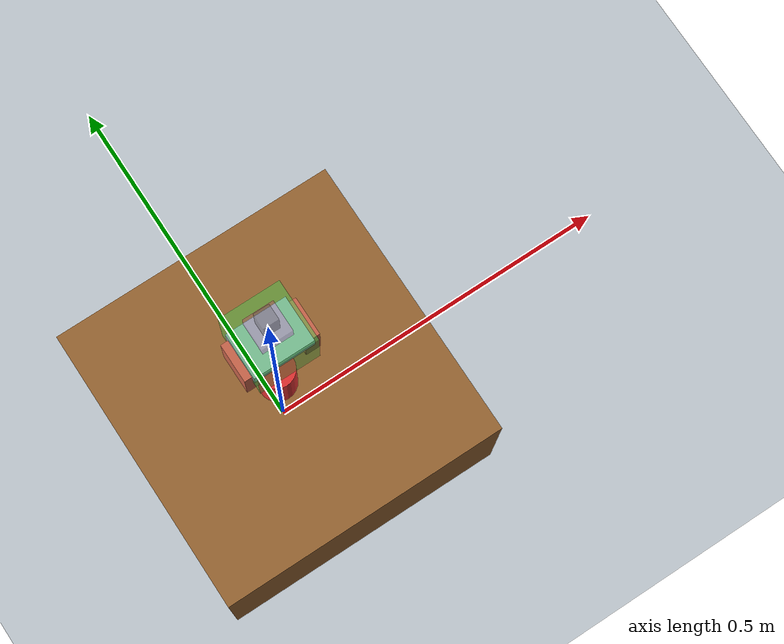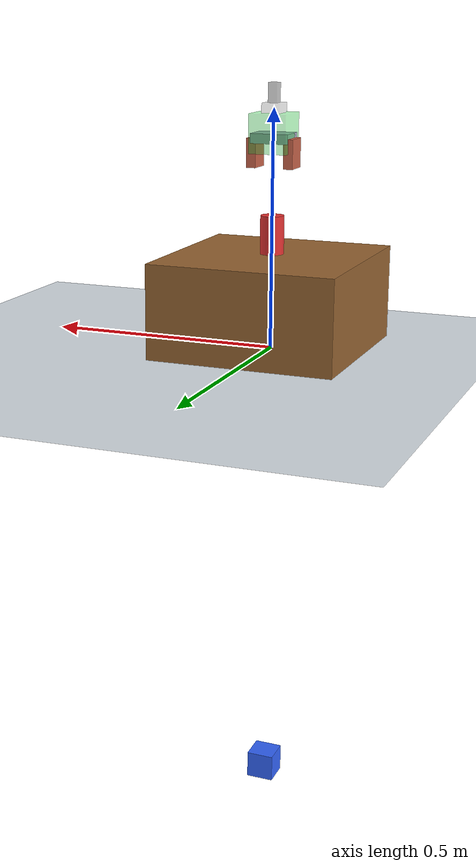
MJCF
<?xml version='1.0' encoding='utf-8'?>
<mujoco model="SimplePicker_scene">
  <!-- 500Hz sim (0.002s timestep) — needed for stable contact dynamics.
       Elliptic cone + noslip iterations for stable high-friction contacts. -->
  <option timestep="0.002" cone="elliptic" noslip_iterations="3" />

  <include file="bot.xml" />

  <statistic extent="1" center="0 0 0.3" />

  <visual>
    <headlight ambient=".4 .4 .4" diffuse=".8 .8 .8" specular="0.1 0.1 0.1" />
    <map znear="0.01" />
    <quality shadowsize="2048" />
  </visual>

  <asset>
    <texture type="skybox" builtin="gradient" rgb1="0.3 0.5 0.7" rgb2="0 0 0"
             width="512" height="3072" />
    <texture type="2d" name="groundplane" builtin="checker" mark="edge"
             rgb1="0.2 0.3 0.4" rgb2="0.1 0.2 0.3" markrgb="0.8 0.8 0.8"
             width="300" height="300" />
    <material name="groundplane" texture="groundplane" texuniform="true"
              texrepeat="5 5" reflectance="0.2" />
  </asset>

  <worldbody>
    <light directional="true" diffuse=".8 .8 .8" pos="0 0 10" dir="0 0 -1" />
    <geom name="floor" type="plane" size="2 2 0.1" material="groundplane" />

    <!-- Table: static box, top surface at z=0.2 -->
    <body name="table" pos="0 0 0.1">
      <geom name="table_top" type="box" size="0.2 0.2 0.1"
            rgba="0.6 0.4 0.2 1.0" mass="100" />
    </body>

    <!-- Cup: free body on table surface (z=0.2 + half height 0.04 + 2mm gap = 0.242) -->
    <body name="cup" pos="0 0 0.242">
      <freejoint name="cup_joint" />
      <geom name="cup_geom" type="cylinder" size="0.025 0.04"
            rgba="0.9 0.2 0.2 1.0" mass="0.05"
            friction="5.0 0.005 0.001" condim="4" />
    </body>

    <!-- Target zone: green semi-transparent cube above table -->
    <body name="target" mocap="true" pos="0 0 0.45">
      <geom name="target_cube" type="box" size="0.04 0.04 0.04"
            rgba="0.2 0.9 0.3 0.4" contype="0" conaffinity="0" />
    </body>

    <!-- Distractors: hidden below floor (SimpleWheelerEnv compatibility) -->
    <body name="distractor_0" mocap="true" pos="0 0 -1">
      <geom name="distractor_0_cube" type="box" size="0.03 0.03 0.03"
            rgba="0.2 0.4 1.0 1.0" contype="0" conaffinity="0" />
    </body>
    <body name="distractor_1" mocap="true" pos="0 0 -1">
      <geom name="distractor_1_cube" type="box" size="0.03 0.03 0.03"
            rgba="0.2 0.9 0.3 1.0" contype="0" conaffinity="0" />
    </body>
    <body name="distractor_2" mocap="true" pos="0 0 -1">
      <geom name="distractor_2_cube" type="box" size="0.03 0.03 0.03"
            rgba="0.9 0.2 0.2 1.0" contype="0" conaffinity="0" />
    </body>
    <body name="distractor_3" mocap="true" pos="0 0 -1">
      <geom name="distractor_3_cube" type="box" size="0.03 0.03 0.03"
            rgba="0.7 0.3 0.9 1.0" contype="0" conaffinity="0" />
    </body>
  </worldbody>

  <!-- Cup position sensor (3 dims) — total sensor dim: 12 (bot) + 3 (cup_pos) = 15 -->
  <sensor>
    <framepos name="cup_pos" objtype="body" objname="cup" />
  </sensor>
</mujoco>

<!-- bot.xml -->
<mujoco model="SimplePicker">
  <compiler angle="radian" />

  <default>
    <joint limited="true" damping="5.0" />
    <geom contype="1" conaffinity="1" condim="4" />
    <position ctrlrange="-1 1" />
  </default>

  <worldbody>
    <!-- Cartesian gantry: X rail -> Y rail -> Z rail (downward) -> palm + fingers
         Gantry base at z=0.5, Z-slide moves downward to reach table at z=0.2 -->
    <body name="x_carriage" pos="0 0 0.5">
      <joint name="x_joint" type="slide" axis="1 0 0" range="-0.15 0.15"
             damping="10.0" />
      <geom name="x_carriage_geom" type="box" size="0.02 0.02 0.01"
            rgba="0.5 0.5 0.5 0.3" mass="0.5" contype="0" conaffinity="0" />

      <body name="y_carriage" pos="0 0 0">
        <joint name="y_joint" type="slide" axis="0 1 0" range="-0.15 0.15"
               damping="10.0" />
        <geom name="y_carriage_geom" type="box" size="0.02 0.02 0.01"
              rgba="0.5 0.5 0.5 0.3" mass="0.5" contype="0" conaffinity="0" />

        <body name="base" pos="0 0 0">
          <!-- Z-slide: range 0 to -0.3 (downward). At max extension, hand at z=0.2 (table surface) -->
          <joint name="z_joint" type="slide" axis="0 0 -1" range="0 0.3"
                 damping="10.0" />
          <geom name="z_rail_geom" type="box" size="0.01 0.01 0.05"
                rgba="0.4 0.4 0.4 0.5" mass="0.2" contype="0" conaffinity="0" />

          <!-- Palm -->
          <geom name="palm" type="box" size="0.04 0.03 0.01" pos="0 0 -0.06"
                rgba="0.7 0.7 0.8 1.0" mass="0.3"
                friction="5.0 0.005 0.001" />

          <!-- Camera on base (SimpleWheelerEnv compatibility, not used in training) -->
          <camera name="camera_1_cam" fovy="90.0"
                  pos="0 -0.1 -0.03" euler="-1.5707963 0 3.14159265" />

          <!-- Left finger -->
          <body name="left_finger" pos="-0.04 0 -0.06">
            <joint name="left_finger_joint" type="slide" axis="1 0 0"
                   range="0 0.04" damping="2.0" />
            <geom name="left_finger_geom" type="box" size="0.01 0.025 0.03"
                  pos="0 0 -0.03" rgba="0.8 0.4 0.3 1.0" mass="0.05"
                  friction="5.0 0.005 0.001" />
            <site name="left_fingertip" pos="0 0 -0.055" size="0.008" />
          </body>

          <!-- Right finger -->
          <body name="right_finger" pos="0.04 0 -0.06">
            <joint name="right_finger_joint" type="slide" axis="-1 0 0"
                   range="0 0.04" damping="2.0" />
            <geom name="right_finger_geom" type="box" size="0.01 0.025 0.03"
                  pos="0 0 -0.03" rgba="0.8 0.4 0.3 1.0" mass="0.05"
                  friction="5.0 0.005 0.001" />
            <site name="right_fingertip" pos="0 0 -0.055" size="0.008" />
          </body>
        </body>
      </body>
    </body>
  </worldbody>

  <!-- Prevent self-collision between gantry parts -->
  <contact>
    <exclude body1="x_carriage" body2="y_carriage" />
    <exclude body1="y_carriage" body2="base" />
    <exclude body1="base" body2="left_finger" />
    <exclude body1="base" body2="right_finger" />
    <exclude body1="left_finger" body2="right_finger" />
  </contact>

  <actuator>
    <position name="x_motor" joint="x_joint" kp="100" ctrlrange="-0.15 0.15" />
    <position name="y_motor" joint="y_joint" kp="100" ctrlrange="-0.15 0.15" />
    <position name="z_motor" joint="z_joint" kp="100" ctrlrange="0 0.3" />
    <position name="left_finger_motor" joint="left_finger_joint" kp="50" ctrlrange="0 0.04" />
    <position name="right_finger_motor" joint="right_finger_joint" kp="50" ctrlrange="0 0.04" />
  </actuator>

  <!-- Sensors: 5 joint positions + 5 joint velocities + 2 touch = 12 dims -->
  <sensor>
    <jointpos name="x_pos" joint="x_joint" />
    <jointpos name="y_pos" joint="y_joint" />
    <jointpos name="z_pos" joint="z_joint" />
    <jointpos name="left_finger_pos" joint="left_finger_joint" />
    <jointpos name="right_finger_pos" joint="right_finger_joint" />
    <jointvel name="x_vel" joint="x_joint" />
    <jointvel name="y_vel" joint="y_joint" />
    <jointvel name="z_vel" joint="z_joint" />
    <jointvel name="left_finger_vel" joint="left_finger_joint" />
    <jointvel name="right_finger_vel" joint="right_finger_joint" />
    <touch name="left_touch" site="left_fingertip" />
    <touch name="right_touch" site="right_fingertip" />
  </sensor>
</mujoco>
